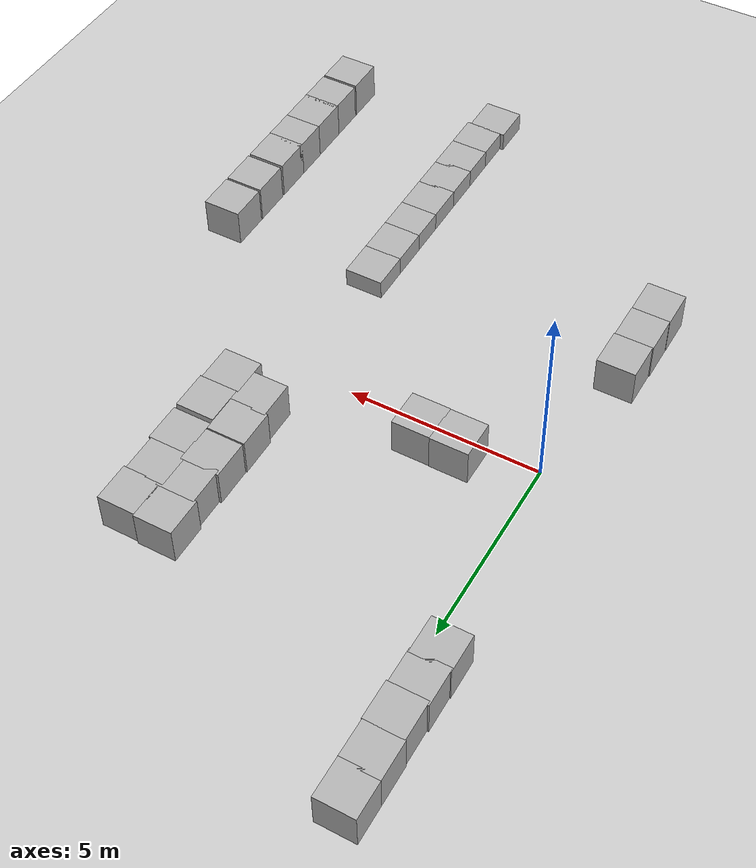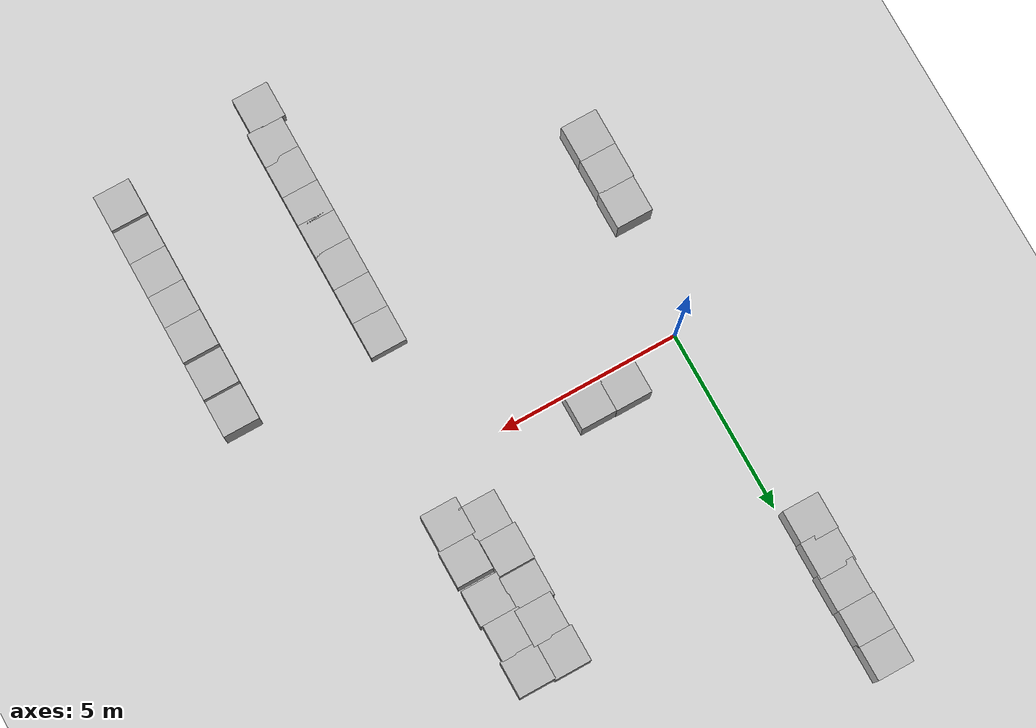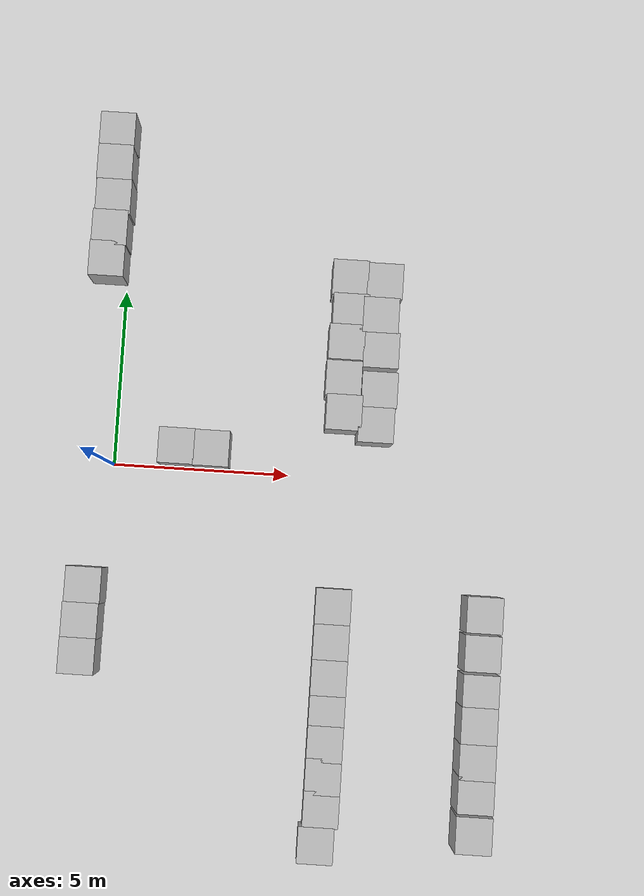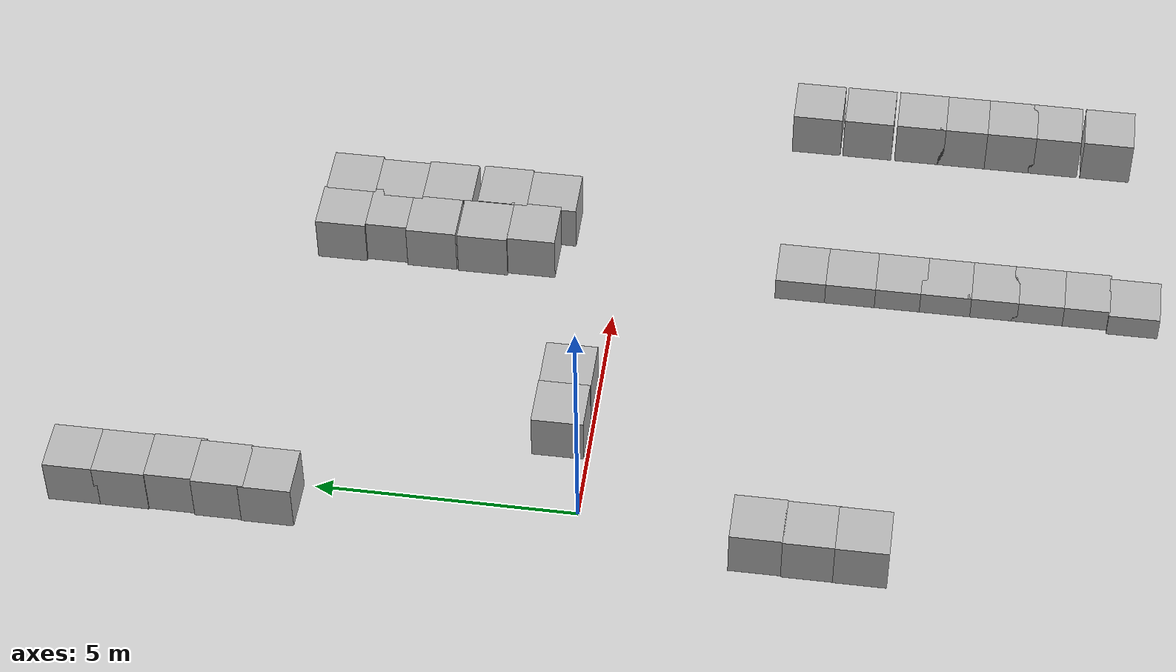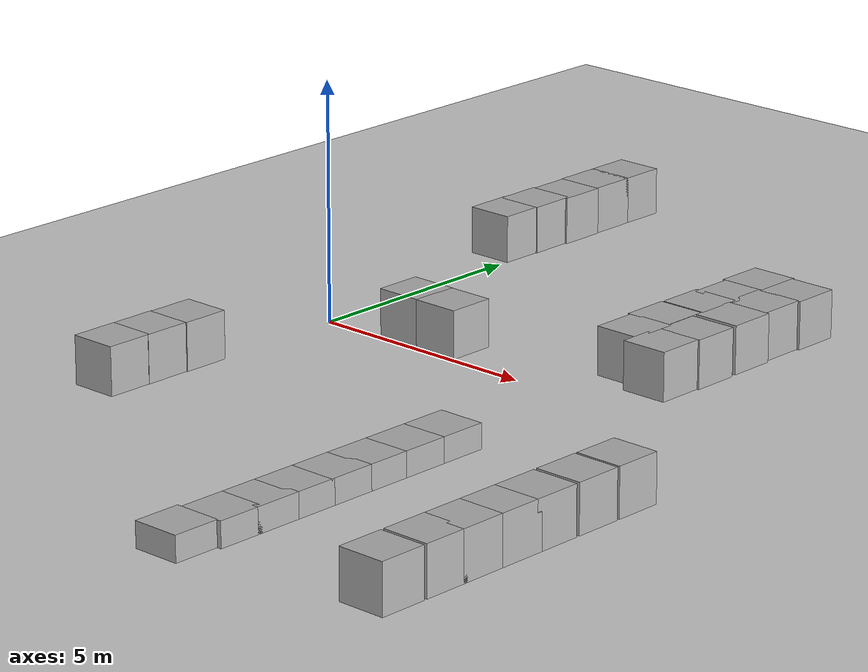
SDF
<sdf version="1.10">
 <world name="empty">
  <model name="ground_plane">
   <static>true</static>
   <link name="link">
    <collision name="collision">
     <geometry><plane><normal>0 0 1</normal><size>100 100</size></plane></geometry>
    </collision>
    <visual name="visual">
     <geometry><plane><normal>0 0 1</normal><size>100 100</size></plane></geometry>
     <material>
      <ambient>0.800000012 0.800000012 0.800000012 1</ambient>
      <diffuse>0.800000012 0.800000012 0.800000012 1</diffuse>
      <specular>0.800000012 0.800000012 0.800000012 1</specular>
     </material>
    </visual>
    <inertial>
     <mass>1</mass>
     <inertia><ixx>1</ixx><ixy>0</ixy><ixz>0</ixz><iyy>1</iyy><iyz>0</iyz><izz>1</izz></inertia>
    </inertial>
   </link>
  </model>
  <model name="box">
   <pose>-0.45962236093902187 -3.4321811878695145 0.5 0 0 0</pose>
   <link name="box_link">
    <inertial>
     <inertia><ixx>0.16666</ixx><ixy>0</ixy><ixz>0</ixz><iyy>0.16666</iyy><iyz>0</iyz><izz>0.16666</izz></inertia>
     <mass>1</mass>
    </inertial>
    <collision name="box_collision"><geometry><box><size>1 1 1</size></box></geometry></collision>
    <visual name="box_visual">
     <geometry><box><size>1 1 1</size></box></geometry>
     <material>
      <ambient>0.300000012 0.300000012 0.300000012 1</ambient>
      <diffuse>0.699999988 0.699999988 0.699999988 1</diffuse>
      <specular>1 1 1 1</specular>
     </material>
    </visual>
   </link>
   <static>true</static>
  </model>
  <model name="box_9">
   <pose>-0.48098175029762213 -4.4153764900574703 0.5 0 0 0</pose>
   <link name="box_link">
    <inertial>
     <inertia><ixx>0.16666</ixx><ixy>0</ixy><ixz>0</ixz><iyy>0.16666</iyy><iyz>0</iyz><izz>0.16666</izz></inertia>
     <mass>1</mass>
    </inertial>
    <collision name="box_collision"><geometry><box><size>1 1 1</size></box></geometry></collision>
    <visual name="box_visual">
     <geometry><box><size>1 1 1</size></box></geometry>
     <material>
      <ambient>0.300000012 0.300000012 0.300000012 1</ambient>
      <diffuse>0.699999988 0.699999988 0.699999988 1</diffuse>
      <specular>1 1 1 1</specular>
     </material>
    </visual>
   </link>
   <static>true</static>
  </model>
  <model name="box_10">
   <pose>-0.48743896738457204 -5.377515620313809 0.5 0 0 0</pose>
   <link name="box_link">
    <inertial>
     <inertia><ixx>0.16666</ixx><ixy>0</ixy><ixz>0</ixz><iyy>0.16666</iyy><iyz>0</iyz><izz>0.16666</izz></inertia>
     <mass>1</mass>
    </inertial>
    <collision name="box_collision"><geometry><box><size>1 1 1</size></box></geometry></collision>
    <visual name="box_visual">
     <geometry><box><size>1 1 1</size></box></geometry>
     <material>
      <ambient>0.300000012 0.300000012 0.300000012 1</ambient>
      <diffuse>0.699999988 0.699999988 0.699999988 1</diffuse>
      <specular>1 1 1 1</specular>
     </material>
    </visual>
   </link>
   <static>true</static>
  </model>
  <model name="box_26">
   <pose>-0.44753930680156817 9.4330309621648745 0.5 0 0 0</pose>
   <link name="box_link">
    <inertial>
     <inertia><ixx>0.16666</ixx><ixy>0</ixy><ixz>0</ixz><iyy>0.16666</iyy><iyz>0</iyz><izz>0.16666</izz></inertia>
     <mass>1</mass>
    </inertial>
    <collision name="box_collision"><geometry><box><size>1 1 1</size></box></geometry></collision>
    <visual name="box_visual">
     <geometry><box><size>1 1 1</size></box></geometry>
     <material>
      <ambient>0.300000012 0.300000012 0.300000012 1</ambient>
      <diffuse>0.699999988 0.699999988 0.699999988 1</diffuse>
      <specular>1 1 1 1</specular>
     </material>
    </visual>
   </link>
   <static>true</static>
  </model>
  <model name="box_27">
   <pose>-0.44753930264989128 8.5017166457179663 0.5 0 0 0</pose>
   <link name="box_link">
    <inertial>
     <inertia><ixx>0.16666</ixx><ixy>0</ixy><ixz>0</ixz><iyy>0.16666</iyy><iyz>0</iyz><izz>0.16666</izz></inertia>
     <mass>1</mass>
    </inertial>
    <collision name="box_collision"><geometry><box><size>1 1 1</size></box></geometry></collision>
    <visual name="box_visual">
     <geometry><box><size>1 1 1</size></box></geometry>
     <material>
      <ambient>0.300000012 0.300000012 0.300000012 1</ambient>
      <diffuse>0.699999988 0.699999988 0.699999988 1</diffuse>
      <specular>1 1 1 1</specular>
     </material>
    </visual>
   </link>
   <static>true</static>
  </model>
  <model name="box_28">
   <pose>-0.42771745107901904 7.5089888810876442 0.5 0 0 0</pose>
   <link name="box_link">
    <inertial>
     <inertia><ixx>0.16666</ixx><ixy>0</ixy><ixz>0</ixz><iyy>0.16666</iyy><iyz>0</iyz><izz>0.16666</izz></inertia>
     <mass>1</mass>
    </inertial>
    <collision name="box_collision"><geometry><box><size>1 1 1</size></box></geometry></collision>
    <visual name="box_visual">
     <geometry><box><size>1 1 1</size></box></geometry>
     <material>
      <ambient>0.300000012 0.300000012 0.300000012 1</ambient>
      <diffuse>0.699999988 0.699999988 0.699999988 1</diffuse>
      <specular>1 1 1 1</specular>
     </material>
    </visual>
   </link>
   <static>true</static>
  </model>
  <model name="box_29">
   <pose>-0.46742406053170782 6.6169409865384967 0.5 0 0 0</pose>
   <link name="box_link">
    <inertial>
     <inertia><ixx>0.16666</ixx><ixy>0</ixy><ixz>0</ixz><iyy>0.16666</iyy><iyz>0</iyz><izz>0.16666</izz></inertia>
     <mass>1</mass>
    </inertial>
    <collision name="box_collision"><geometry><box><size>1 1 1</size></box></geometry></collision>
    <visual name="box_visual">
     <geometry><box><size>1 1 1</size></box></geometry>
     <material>
      <ambient>0.300000012 0.300000012 0.300000012 1</ambient>
      <diffuse>0.699999988 0.699999988 0.699999988 1</diffuse>
      <specular>1 1 1 1</specular>
     </material>
    </visual>
   </link>
   <static>true</static>
  </model>
  <model name="box_30">
   <pose>-0.48724595930397385 5.7228831728455845 0.5 0 0 0</pose>
   <link name="box_link">
    <inertial>
     <inertia><ixx>0.16666</ixx><ixy>0</ixy><ixz>0</ixz><iyy>0.16666</iyy><iyz>0</iyz><izz>0.16666</izz></inertia>
     <mass>1</mass>
    </inertial>
    <collision name="box_collision"><geometry><box><size>1 1 1</size></box></geometry></collision>
    <visual name="box_visual">
     <geometry><box><size>1 1 1</size></box></geometry>
     <material>
      <ambient>0.300000012 0.300000012 0.300000012 1</ambient>
      <diffuse>0.699999988 0.699999988 0.699999988 1</diffuse>
      <specular>1 1 1 1</specular>
     </material>
    </visual>
   </link>
   <static>true</static>
  </model>
  <model name="box_42">
   <pose>7.3660996858411485 5.5663733601683347 0.5 0 0 0</pose>
   <link name="box_link">
    <inertial>
     <inertia><ixx>0.16666</ixx><ixy>0</ixy><ixz>0</ixz><iyy>0.16666</iyy><iyz>0</iyz><izz>0.16666</izz></inertia>
     <mass>1</mass>
    </inertial>
    <collision name="box_collision"><geometry><box><size>1 1 1</size></box></geometry></collision>
    <visual name="box_visual">
     <geometry><box><size>1 1 1</size></box></geometry>
     <material>
      <ambient>0.300000012 0.300000012 0.300000012 1</ambient>
      <diffuse>0.699999988 0.699999988 0.699999988 1</diffuse>
      <specular>1 1 1 1</specular>
     </material>
    </visual>
   </link>
   <static>true</static>
  </model>
  <model name="box_43">
   <pose>7.3065707860405409 4.594787600431216 0.5 0 0 0</pose>
   <link name="box_link">
    <inertial>
     <inertia><ixx>0.16666</ixx><ixy>0</ixy><ixz>0</ixz><iyy>0.16666</iyy><iyz>0</iyz><izz>0.16666</izz></inertia>
     <mass>1</mass>
    </inertial>
    <collision name="box_collision"><geometry><box><size>1 1 1</size></box></geometry></collision>
    <visual name="box_visual">
     <geometry><box><size>1 1 1</size></box></geometry>
     <material>
      <ambient>0.300000012 0.300000012 0.300000012 1</ambient>
      <diffuse>0.699999988 0.699999988 0.699999988 1</diffuse>
      <specular>1 1 1 1</specular>
     </material>
    </visual>
   </link>
   <static>true</static>
  </model>
  <model name="box_44">
   <pose>7.3660997225926783 3.6020592528556641 0.5 0 0 0</pose>
   <link name="box_link">
    <inertial>
     <inertia><ixx>0.16666</ixx><ixy>0</ixy><ixz>0</ixz><iyy>0.16666</iyy><iyz>0</iyz><izz>0.16666</izz></inertia>
     <mass>1</mass>
    </inertial>
    <collision name="box_collision"><geometry><box><size>1 1 1</size></box></geometry></collision>
    <visual name="box_visual">
     <geometry><box><size>1 1 1</size></box></geometry>
     <material>
      <ambient>0.300000012 0.300000012 0.300000012 1</ambient>
      <diffuse>0.699999988 0.699999988 0.699999988 1</diffuse>
      <specular>1 1 1 1</specular>
     </material>
    </visual>
   </link>
   <static>true</static>
  </model>
  <model name="box_45">
   <pose>7.3859846974575323 2.4915320340674372 0.5 0 0 0</pose>
   <link name="box_link">
    <inertial>
     <inertia><ixx>0.16666</ixx><ixy>0</ixy><ixz>0</ixz><iyy>0.16666</iyy><iyz>0</iyz><izz>0.16666</izz></inertia>
     <mass>1</mass>
    </inertial>
    <collision name="box_collision"><geometry><box><size>1 1 1</size></box></geometry></collision>
    <visual name="box_visual">
     <geometry><box><size>1 1 1</size></box></geometry>
     <material>
      <ambient>0.300000012 0.300000012 0.300000012 1</ambient>
      <diffuse>0.699999988 0.699999988 0.699999988 1</diffuse>
      <specular>1 1 1 1</specular>
     </material>
    </visual>
   </link>
   <static>true</static>
  </model>
  <model name="box_46">
   <pose>7.3462150167883538 1.5008160010610077 0.5 0 0 0</pose>
   <link name="box_link">
    <inertial>
     <inertia><ixx>0.16666</ixx><ixy>0</ixy><ixz>0</ixz><iyy>0.16666</iyy><iyz>0</iyz><izz>0.16666</izz></inertia>
     <mass>1</mass>
    </inertial>
    <collision name="box_collision"><geometry><box><size>1 1 1</size></box></geometry></collision>
    <visual name="box_visual">
     <geometry><box><size>1 1 1</size></box></geometry>
     <material>
      <ambient>0.300000012 0.300000012 0.300000012 1</ambient>
      <diffuse>0.699999988 0.699999988 0.699999988 1</diffuse>
      <specular>1 1 1 1</specular>
     </material>
    </visual>
   </link>
   <static>true</static>
  </model>
  <model name="box_47">
   <pose>6.3941365179683816 5.6066457581074172 0.5 0 0 0</pose>
   <link name="box_link">
    <inertial>
     <inertia><ixx>0.16666</ixx><ixy>0</ixy><ixz>0</ixz><iyy>0.16666</iyy><iyz>0</iyz><izz>0.16666</izz></inertia>
     <mass>1</mass>
    </inertial>
    <collision name="box_collision"><geometry><box><size>1 1 1</size></box></geometry></collision>
    <visual name="box_visual">
     <geometry><box><size>1 1 1</size></box></geometry>
     <material>
      <ambient>0.300000012 0.300000012 0.300000012 1</ambient>
      <diffuse>0.699999988 0.699999988 0.699999988 1</diffuse>
      <specular>1 1 1 1</specular>
     </material>
    </visual>
   </link>
   <static>true</static>
  </model>
  <model name="box_48">
   <pose>6.4536654449317128 4.6541905989384027 0.5 0 0 0</pose>
   <link name="box_link">
    <inertial>
     <inertia><ixx>0.16666</ixx><ixy>0</ixy><ixz>0</ixz><iyy>0.16666</iyy><iyz>0</iyz><izz>0.16666</izz></inertia>
     <mass>1</mass>
    </inertial>
    <collision name="box_collision"><geometry><box><size>1 1 1</size></box></geometry></collision>
    <visual name="box_visual">
     <geometry><box><size>1 1 1</size></box></geometry>
     <material>
      <ambient>0.300000012 0.300000012 0.300000012 1</ambient>
      <diffuse>0.699999988 0.699999988 0.699999988 1</diffuse>
      <specular>1 1 1 1</specular>
     </material>
    </visual>
   </link>
   <static>true</static>
  </model>
  <model name="box_49">
   <pose>6.3941369417544047 3.7812736967261777 0.5 0 0 0</pose>
   <link name="box_link">
    <inertial>
     <inertia><ixx>0.16666</ixx><ixy>0</ixy><ixz>0</ixz><iyy>0.16666</iyy><iyz>0</iyz><izz>0.16666</izz></inertia>
     <mass>1</mass>
    </inertial>
    <collision name="box_collision"><geometry><box><size>1 1 1</size></box></geometry></collision>
    <visual name="box_visual">
     <geometry><box><size>1 1 1</size></box></geometry>
     <material>
      <ambient>0.300000012 0.300000012 0.300000012 1</ambient>
      <diffuse>0.699999988 0.699999988 0.699999988 1</diffuse>
      <specular>1 1 1 1</specular>
     </material>
    </visual>
   </link>
   <static>true</static>
  </model>
  <model name="box_50">
   <pose>6.3742515349453974 2.7492788199746201 0.5 0 0 0</pose>
   <link name="box_link">
    <inertial>
     <inertia><ixx>0.16666</ixx><ixy>0</ixy><ixz>0</ixz><iyy>0.16666</iyy><iyz>0</iyz><izz>0.16666</izz></inertia>
     <mass>1</mass>
    </inertial>
    <collision name="box_collision"><geometry><box><size>1 1 1</size></box></geometry></collision>
    <visual name="box_visual">
     <geometry><box><size>1 1 1</size></box></geometry>
     <material>
      <ambient>0.300000012 0.300000012 0.300000012 1</ambient>
      <diffuse>0.699999988 0.699999988 0.699999988 1</diffuse>
      <specular>1 1 1 1</specular>
     </material>
    </visual>
   </link>
   <static>true</static>
  </model>
  <model name="box_51">
   <pose>6.4337801668118972 1.7978299093564933 0.5 0 0 0</pose>
   <link name="box_link">
    <inertial>
     <inertia><ixx>0.16666</ixx><ixy>0</ixy><ixz>0</ixz><iyy>0.16666</iyy><iyz>0</iyz><izz>0.16666</izz></inertia>
     <mass>1</mass>
    </inertial>
    <collision name="box_collision"><geometry><box><size>1 1 1</size></box></geometry></collision>
    <visual name="box_visual">
     <geometry><box><size>1 1 1</size></box></geometry>
     <material>
      <ambient>0.300000012 0.300000012 0.300000012 1</ambient>
      <diffuse>0.699999988 0.699999988 0.699999988 1</diffuse>
      <specular>1 1 1 1</specular>
     </material>
    </visual>
   </link>
   <static>true</static>
  </model>
  <model name="box_59">
   <pose>6.482719898223877 -3.61788010597229 -0.004999999888241291 0 0 0</pose>
   <link name="box_link">
    <inertial>
     <inertia><ixx>0.16666</ixx><ixy>0</ixy><ixz>0</ixz><iyy>0.16666</iyy><iyz>0</iyz><izz>0.16666</izz></inertia>
     <mass>1</mass>
    </inertial>
    <collision name="box_collision"><geometry><box><size>1 1 1</size></box></geometry></collision>
    <visual name="box_visual">
     <geometry><box><size>1 1 1</size></box></geometry>
     <material>
      <ambient>0.300000012 0.300000012 0.300000012 1</ambient>
      <diffuse>0.699999988 0.699999988 0.699999988 1</diffuse>
      <specular>1 1 1 1</specular>
     </material>
    </visual>
   </link>
   <static>true</static>
  </model>
  <model name="box_60">
   <pose>6.482719898223877 -4.6096000671386719 -0.004999999888241291 0 0 0</pose>
   <link name="box_link">
    <inertial>
     <inertia><ixx>0.16666</ixx><ixy>0</ixy><ixz>0</ixz><iyy>0.16666</iyy><iyz>0</iyz><izz>0.16666</izz></inertia>
     <mass>1</mass>
    </inertial>
    <collision name="box_collision"><geometry><box><size>1 1 1</size></box></geometry></collision>
    <visual name="box_visual">
     <geometry><box><size>1 1 1</size></box></geometry>
     <material>
      <ambient>0.300000012 0.300000012 0.300000012 1</ambient>
      <diffuse>0.699999988 0.699999988 0.699999988 1</diffuse>
      <specular>1 1 1 1</specular>
     </material>
    </visual>
   </link>
   <static>true</static>
  </model>
  <model name="box_61">
   <pose>6.482719898223877 -5.6003198623657227 -0.004999999888241291 0 0 0</pose>
   <link name="box_link">
    <inertial>
     <inertia><ixx>0.16666</ixx><ixy>0</ixy><ixz>0</ixz><iyy>0.16666</iyy><iyz>0</iyz><izz>0.16666</izz></inertia>
     <mass>1</mass>
    </inertial>
    <collision name="box_collision"><geometry><box><size>1 1 1</size></box></geometry></collision>
    <visual name="box_visual">
     <geometry><box><size>1 1 1</size></box></geometry>
     <material>
      <ambient>0.300000012 0.300000012 0.300000012 1</ambient>
      <diffuse>0.699999988 0.699999988 0.699999988 1</diffuse>
      <specular>1 1 1 1</specular>
     </material>
    </visual>
   </link>
   <static>true</static>
  </model>
  <model name="box_62">
   <pose>6.482719898223877 -6.4941501617431641 -0.004999999888241291 0 0 0</pose>
   <link name="box_link">
    <inertial>
     <inertia><ixx>0.16666</ixx><ixy>0</ixy><ixz>0</ixz><iyy>0.16666</iyy><iyz>0</iyz><izz>0.16666</izz></inertia>
     <mass>1</mass>
    </inertial>
    <collision name="box_collision"><geometry><box><size>1 1 1</size></box></geometry></collision>
    <visual name="box_visual">
     <geometry><box><size>1 1 1</size></box></geometry>
     <material>
      <ambient>0.300000012 0.300000012 0.300000012 1</ambient>
      <diffuse>0.699999988 0.699999988 0.699999988 1</diffuse>
      <specular>1 1 1 1</specular>
     </material>
    </visual>
   </link>
   <static>true</static>
  </model>
  <model name="box_63">
   <pose>6.482719898223877 -7.4254598617553711 -0.004999999888241291 0 0 0</pose>
   <link name="box_link">
    <inertial>
     <inertia><ixx>0.16666</ixx><ixy>0</ixy><ixz>0</ixz><iyy>0.16666</iyy><iyz>0</iyz><izz>0.16666</izz></inertia>
     <mass>1</mass>
    </inertial>
    <collision name="box_collision"><geometry><box><size>1 1 1</size></box></geometry></collision>
    <visual name="box_visual">
     <geometry><box><size>1 1 1</size></box></geometry>
     <material>
      <ambient>0.300000012 0.300000012 0.300000012 1</ambient>
      <diffuse>0.699999988 0.699999988 0.699999988 1</diffuse>
      <specular>1 1 1 1</specular>
     </material>
    </visual>
   </link>
   <static>true</static>
  </model>
  <model name="box_64">
   <pose>6.482719898223877 -8.3195199966430664 -0.004999999888241291 0 0 0</pose>
   <link name="box_link">
    <inertial>
     <inertia><ixx>0.16666</ixx><ixy>0</ixy><ixz>0</ixz><iyy>0.16666</iyy><iyz>0</iyz><izz>0.16666</izz></inertia>
     <mass>1</mass>
    </inertial>
    <collision name="box_collision"><geometry><box><size>1 1 1</size></box></geometry></collision>
    <visual name="box_visual">
     <geometry><box><size>1 1 1</size></box></geometry>
     <material>
      <ambient>0.300000012 0.300000012 0.300000012 1</ambient>
      <diffuse>0.699999988 0.699999988 0.699999988 1</diffuse>
      <specular>1 1 1 1</specular>
     </material>
    </visual>
   </link>
   <static>true</static>
  </model>
  <model name="box_65">
   <pose>6.482719898223877 -9.2103004455566406 -0.004999999888241291 0 0 0</pose>
   <link name="box_link">
    <inertial>
     <inertia><ixx>0.16666</ixx><ixy>0</ixy><ixz>0</ixz><iyy>0.16666</iyy><iyz>0</iyz><izz>0.16666</izz></inertia>
     <mass>1</mass>
    </inertial>
    <collision name="box_collision"><geometry><box><size>1 1 1</size></box></geometry></collision>
    <visual name="box_visual">
     <geometry><box><size>1 1 1</size></box></geometry>
     <material>
      <ambient>0.300000012 0.300000012 0.300000012 1</ambient>
      <diffuse>0.699999988 0.699999988 0.699999988 1</diffuse>
      <specular>1 1 1 1</specular>
     </material>
    </visual>
   </link>
   <static>true</static>
  </model>
  <model name="box_52">
   <pose>1.8334073361456813 0.57570451557779911 0.5 0 0 0</pose>
   <link name="box_link">
    <inertial>
     <inertia><ixx>0.16666</ixx><ixy>0</ixy><ixz>0</ixz><iyy>0.16666</iyy><iyz>0</iyz><izz>0.16666</izz></inertia>
     <mass>1</mass>
    </inertial>
    <collision name="box_collision"><geometry><box><size>1 1 1</size></box></geometry></collision>
    <visual name="box_visual">
     <geometry><box><size>1 1 1</size></box></geometry>
     <material>
      <ambient>0.300000012 0.300000012 0.300000012 1</ambient>
      <diffuse>0.699999988 0.699999988 0.699999988 1</diffuse>
      <specular>1 1 1 1</specular>
     </material>
    </visual>
   </link>
   <static>true</static>
  </model>
  <model name="box_53">
   <pose>2.8132678200950831 0.5642737678189178 0.5 0 0 0</pose>
   <link name="box_link">
    <inertial>
     <inertia><ixx>0.16666</ixx><ixy>0</ixy><ixz>0</ixz><iyy>0.16666</iyy><iyz>0</iyz><izz>0.16666</izz></inertia>
     <mass>1</mass>
    </inertial>
    <collision name="box_collision"><geometry><box><size>1 1 1</size></box></geometry></collision>
    <visual name="box_visual">
     <geometry><box><size>1 1 1</size></box></geometry>
     <material>
      <ambient>0.300000012 0.300000012 0.300000012 1</ambient>
      <diffuse>0.699999988 0.699999988 0.699999988 1</diffuse>
      <specular>1 1 1 1</specular>
     </material>
    </visual>
   </link>
   <static>true</static>
  </model>
  <model name="box_54">
   <pose>10.632849131004257 -3.5636417593596139 0.5 0 0 0</pose>
   <link name="box_link">
    <inertial>
     <inertia><ixx>0.16666</ixx><ixy>0</ixy><ixz>0</ixz><iyy>0.16666</iyy><iyz>0</iyz><izz>0.16666</izz></inertia>
     <mass>1</mass>
    </inertial>
    <collision name="box_collision"><geometry><box><size>1 1 1</size></box></geometry></collision>
    <visual name="box_visual">
     <geometry><box><size>1 1 1</size></box></geometry>
     <material>
      <ambient>0.300000012 0.300000012 0.300000012 1</ambient>
      <diffuse>0.699999988 0.699999988 0.699999988 1</diffuse>
      <specular>1 1 1 1</specular>
     </material>
    </visual>
   </link>
   <static>true</static>
  </model>
  <model name="box_55">
   <pose>10.632800102233887 -4.6169800758361816 0.5 0 0 0</pose>
   <link name="box_link">
    <inertial>
     <inertia><ixx>0.16666</ixx><ixy>0</ixy><ixz>0</ixz><iyy>0.16666</iyy><iyz>0</iyz><izz>0.16666</izz></inertia>
     <mass>1</mass>
    </inertial>
    <collision name="box_collision"><geometry><box><size>1 1 1</size></box></geometry></collision>
    <visual name="box_visual">
     <geometry><box><size>1 1 1</size></box></geometry>
     <material>
      <ambient>0.300000012 0.300000012 0.300000012 1</ambient>
      <diffuse>0.699999988 0.699999988 0.699999988 1</diffuse>
      <specular>1 1 1 1</specular>
     </material>
    </visual>
   </link>
   <static>true</static>
  </model>
  <model name="box_56">
   <pose>10.632800102233887 -5.6905498504638672 0.5 0 0 0</pose>
   <link name="box_link">
    <inertial>
     <inertia><ixx>0.16666</ixx><ixy>0</ixy><ixz>0</ixz><iyy>0.16666</iyy><iyz>0</iyz><izz>0.16666</izz></inertia>
     <mass>1</mass>
    </inertial>
    <collision name="box_collision"><geometry><box><size>1 1 1</size></box></geometry></collision>
    <visual name="box_visual">
     <geometry><box><size>1 1 1</size></box></geometry>
     <material>
      <ambient>0.300000012 0.300000012 0.300000012 1</ambient>
      <diffuse>0.699999988 0.699999988 0.699999988 1</diffuse>
      <specular>1 1 1 1</specular>
     </material>
    </visual>
   </link>
   <static>true</static>
  </model>
  <model name="box_57">
   <pose>10.632800102233887 -6.5760002136230469 0.5 0 0 0</pose>
   <link name="box_link">
    <inertial>
     <inertia><ixx>0.16666</ixx><ixy>0</ixy><ixz>0</ixz><iyy>0.16666</iyy><iyz>0</iyz><izz>0.16666</izz></inertia>
     <mass>1</mass>
    </inertial>
    <collision name="box_collision"><geometry><box><size>1 1 1</size></box></geometry></collision>
    <visual name="box_visual">
     <geometry><box><size>1 1 1</size></box></geometry>
     <material>
      <ambient>0.300000012 0.300000012 0.300000012 1</ambient>
      <diffuse>0.699999988 0.699999988 0.699999988 1</diffuse>
      <specular>1 1 1 1</specular>
     </material>
    </visual>
   </link>
   <static>true</static>
  </model>
  <model name="box_58">
   <pose>10.632800102233887 -7.5446500778198242 0.5 0 0 0</pose>
   <link name="box_link">
    <inertial>
     <inertia><ixx>0.16666</ixx><ixy>0</ixy><ixz>0</ixz><iyy>0.16666</iyy><iyz>0</iyz><izz>0.16666</izz></inertia>
     <mass>1</mass>
    </inertial>
    <collision name="box_collision"><geometry><box><size>1 1 1</size></box></geometry></collision>
    <visual name="box_visual">
     <geometry><box><size>1 1 1</size></box></geometry>
     <material>
      <ambient>0.300000012 0.300000012 0.300000012 1</ambient>
      <diffuse>0.699999988 0.699999988 0.699999988 1</diffuse>
      <specular>1 1 1 1</specular>
     </material>
    </visual>
   </link>
   <static>true</static>
  </model>
  <model name="box_66">
   <pose>6.3882198333740234 -10.187899589538574 -0.004999999888241291 0 0 0</pose>
   <link name="box_link">
    <inertial>
     <inertia><ixx>0.16666</ixx><ixy>0</ixy><ixz>0</ixz><iyy>0.16666</iyy><iyz>0</iyz><izz>0.16666</izz></inertia>
     <mass>1</mass>
    </inertial>
    <collision name="box_collision"><geometry><box><size>1 1 1</size></box></geometry></collision>
    <visual name="box_visual">
     <geometry><box><size>1 1 1</size></box></geometry>
     <material>
      <ambient>0.300000012 0.300000012 0.300000012 1</ambient>
      <diffuse>0.699999988 0.699999988 0.699999988 1</diffuse>
      <specular>1 1 1 1</specular>
     </material>
    </visual>
   </link>
   <static>true</static>
  </model>
  <model name="box_67">
   <pose>10.632800102233887 -8.4474401473999023 0.5 0 0 0</pose>
   <link name="box_link">
    <inertial>
     <inertia><ixx>0.16666</ixx><ixy>0</ixy><ixz>0</ixz><iyy>0.16666</iyy><iyz>0</iyz><izz>0.16666</izz></inertia>
     <mass>1</mass>
    </inertial>
    <collision name="box_collision"><geometry><box><size>1 1 1</size></box></geometry></collision>
    <visual name="box_visual">
     <geometry><box><size>1 1 1</size></box></geometry>
     <material>
      <ambient>0.300000012 0.300000012 0.300000012 1</ambient>
      <diffuse>0.699999988 0.699999988 0.699999988 1</diffuse>
      <specular>1 1 1 1</specular>
     </material>
    </visual>
   </link>
   <static>true</static>
  </model>
  <model name="box_68">
   <pose>10.632800102233887 -9.5125102996826172 0.5 0 0 0</pose>
   <link name="box_link">
    <inertial>
     <inertia><ixx>0.16666</ixx><ixy>0</ixy><ixz>0</ixz><iyy>0.16666</iyy><iyz>0</iyz><izz>0.16666</izz></inertia>
     <mass>1</mass>
    </inertial>
    <collision name="box_collision"><geometry><box><size>1 1 1</size></box></geometry></collision>
    <visual name="box_visual">
     <geometry><box><size>1 1 1</size></box></geometry>
     <material>
      <ambient>0.300000012 0.300000012 0.300000012 1</ambient>
      <diffuse>0.699999988 0.699999988 0.699999988 1</diffuse>
      <specular>1 1 1 1</specular>
     </material>
    </visual>
   </link>
   <static>true</static>
  </model>
 </world>
</sdf>
